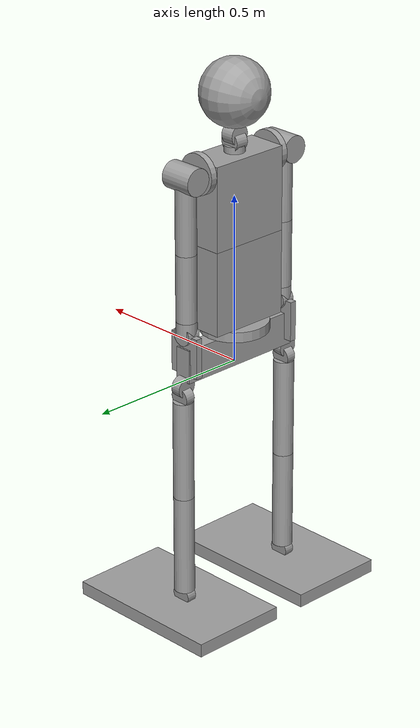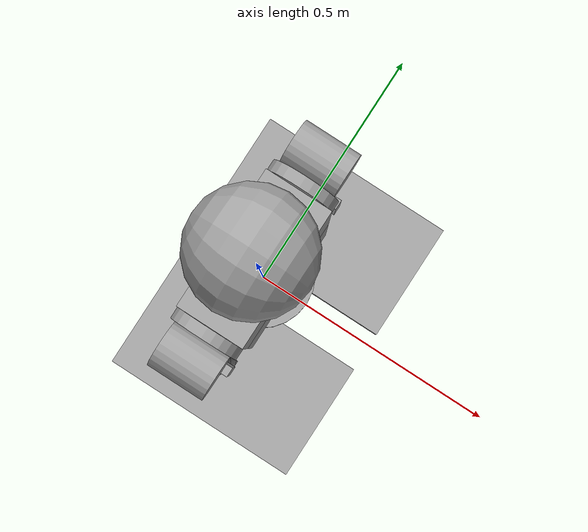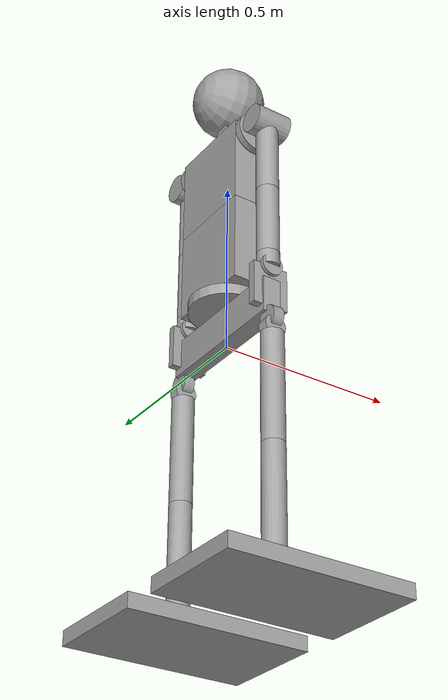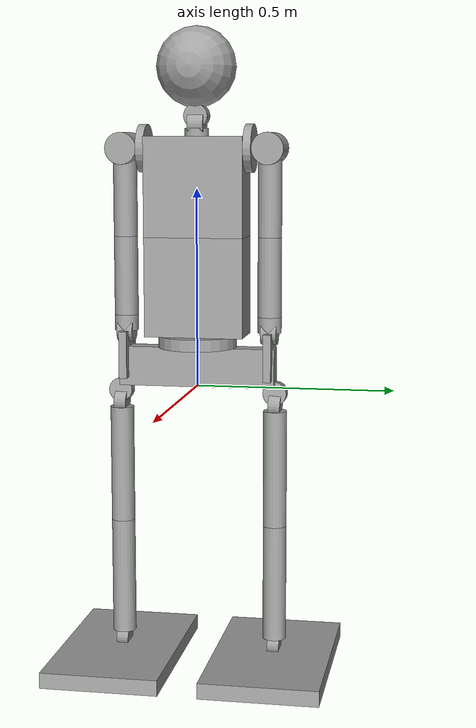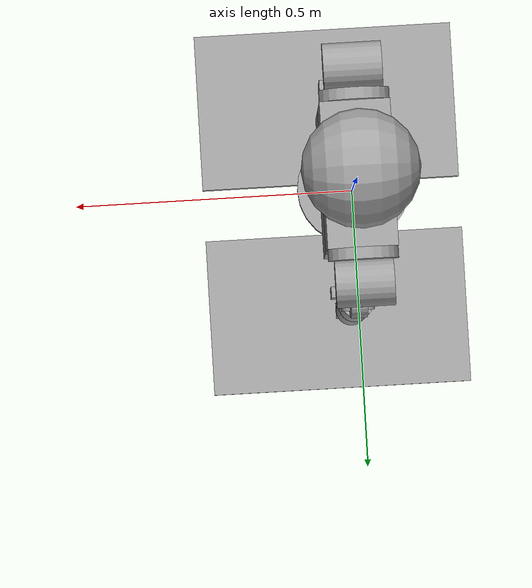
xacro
<robot xmlns:xacro="http://www.ros.org/wiki/xacro" name="stickbot_humanoid_32dof" >
    <xacro:include filename="$(find stickbot_humanoid_32dof)/models/stickbot_humanoid_32dof/xacro/stickbot_humanoid_32dof_base.xacro" />
    <stickbot_humanoid_32dof />

    <link name="world">
        <!-- Virtual Link -->
        <inertial>
            <mass value="0.1"/>
            <origin rpy="0 0 0" xyz="0 0 1.2"/>
            <inertia ixx="8.33333333333e-05" ixy="0.0" ixz="0.0" iyy="8.33333333333e-05" iyz="0.0" izz="0.000125"/>
        </inertial>
    </link>

    <joint name="footOffset" type="fixed">
        <origin rpy="0 0 0" xyz="0 0 0"/>
        <axis xyz="0 0 1"/>
        <parent link="world"/>
        <child link="pelvis"/>
    </joint>
</robot>

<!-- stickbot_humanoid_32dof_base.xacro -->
<robot xmlns:xacro="http://ros.org/wiki/xacro" name="stickbot_humanoid_32dof">

  <macro name="stickbot_humanoid_32dof">
    <link name="pelvis">
      <inertial>
        <mass value="2"/>
        <origin xyz="0.0 0.0 0.05"/>
        <inertia ixx="0.008667" ixy="0" ixz="0" iyy="0.008667" iyz="0" izz="0.01667"/>
      </inertial>
      <visual>
        <origin rpy="0 0 0 " xyz="0.0 -0.0 0.05"/>
        <geometry name="pelvis">
          <box size="0.05 0.4 0.1"/>
        </geometry>
        <material name="grey">
          <color rgba="0.627 0.627 0.627 1"/>
        </material>
      </visual>
      <collision>
        <origin rpy="0 0 0 " xyz="0.0 -0.0 0.05"/>
        <geometry name="pelvis">
          <box size="0.05 0.4 0.1"/>
        </geometry>
      </collision>
    </link>

  <!--LEFT LEG-->
    <joint name="leftHipJoint1" type="continuous">
      <axis xyz="0 0 1"/>
      <origin rpy="0 0 0" xyz="0 0.2 0.0"/>
      <parent link="pelvis"/>
      <child link="leftHipLink1"/>
      <dynamics damping="0.1"/>
      <limit effort="100" lower="-3.14" upper="3.14" velocity="1"/>
      <provide_feedback>true</provide_feedback>
    </joint>

    <link name="leftHipLink1">
      <inertial>
        <mass value="2.0"/>
        <origin xyz="0.0 0.0 -0.015"/>
        <inertia ixx="0.00015" ixy="0" ixz="0" iyy="0.00015" iyz="0" izz="0.000225"/>
      </inertial>
      <visual>
        <origin rpy="0 1.507 0" xyz="0 0.0 -0.015"/>
        <geometry name="leftHipLink1">
          <cylinder radius="0.03" length="0.03"/>
        </geometry>
        <material name="grey">
          <color rgba="0.627 0.627 0.627 1"/>
        </material>
      </visual>
      <collision>
        <origin rpy="1.507 0 0.0 " xyz="0 0.0 -0.015"/>
        <geometry name="leftHipLink1">
          <cylinder radius="0.03" length="0.03"/>
        </geometry>
      </collision>
    </link>

     <joint name="leftHipExtensor" type="continuous">
      <axis xyz="0 1 0"/>
      <origin rpy="0 0 0" xyz="0 0 -0.03"/>
      <parent link="leftHipLink1"/>
      <child link="leftHipExtensorLink"/>
      <dynamics damping="0.1"/>
      <limit effort="100" lower="-3.14" upper="3.14" velocity="1"/>
      <provide_feedback>true</provide_feedback>
    </joint>

    <link name="leftHipExtensorLink">
      <inertial>
        <mass value="2.0"/>
        <origin xyz="0.0 0.0 -0.015"/>
        <inertia ixx="0.00015" ixy="0" ixz="0" iyy="0.00015" iyz="0" izz="0.000225"/>
      </inertial>
      <visual>
        <origin rpy="1.507 0 0" xyz="0 0 -0.015"/>
        <geometry name="leftHipExtensorLink">
          <cylinder radius="0.03" length="0.03"/>
        </geometry>
        <material name="grey">
          <color rgba="0.627 0.627 0.627 1"/>
        </material>
      </visual>
      <collision>
        <origin rpy="1.507 0 0.0 " xyz="0 0 -0.015"/>
        <geometry name="leftHipExtensorLink">
          <cylinder radius="0.03" length="0.03"/>
        </geometry>
      </collision>
    </link>

     <joint name="leftHipAductor" type="continuous">
      <axis xyz="1 0 0"/>
      <origin rpy="0 0 0" xyz="0 0 -0.03"/>
      <parent link="leftHipExtensorLink"/>
      <child link="leftUpperLeg"/>
      <dynamics damping="0.1"/>
      <limit effort="100" lower="-3.14" upper="3.14" velocity="1"/>
      <provide_feedback>true</provide_feedback>
    </joint>

    <link name="leftUpperLeg">
      <inertial>
        <mass value="2.0"/>
        <origin xyz="-0.0 0 -0.15"/>
        <inertia ixx="0.01545" ixy="0" ixz="0" iyy="0.01545" iyz="0" izz="0.0009"/>
      </inertial>
      <visual>
        <origin rpy="0 0 0 " xyz="0 0 -0.15"/>
        <geometry name="leftUpperLeg">
          <cylinder radius="0.03" length="0.3"/>
        </geometry>
        <material name="grey">
          <color rgba="0.627 0.627 0.627 1"/>
        </material>
      </visual>
      <collision>
        <origin rpy="0 0 0 " xyz="0 0 -0.3"/>
        <geometry name="leftUpperLeg">
          <cylinder radius="0.03" length="0.3"/>
        </geometry>
      </collision>
    </link>

    <joint name="leftKnee" type="continuous">
      <axis xyz="0 1 0"/>
      <origin rpy="0 0 0" xyz="0 0 -0.3"/>
      <parent link="leftUpperLeg"/>
      <child link="leftLowerLeg"/>
      <dynamics damping="0.1"/>
      <limit effort="100" lower="-3.14" upper="3.14" velocity="1"/>
      <provide_feedback>true</provide_feedback>
    </joint>

    <link name="leftLowerLeg">
      <inertial>
        <mass value="2.0"/>
        <origin xyz="-0.0 0 -0.15"/>
        <inertia ixx="0.01545" ixy="0" ixz="0" iyy="0.01545" iyz="0" izz="0.0009"/>
      </inertial>
      <visual>
        <origin rpy="0 0 0 " xyz="0 0 -0.15"/>
        <geometry name="leftLowerLeg">
          <cylinder radius="0.03" length="0.3"/>
        </geometry>
        <material name="grey">
          <color rgba="0.627 0.627 0.627 1"/>
        </material>
      </visual>
      <collision>
        <origin rpy="0 0 0 " xyz="0 0 -0.15"/>
        <geometry name="leftLowerLeg">
          <cylinder radius="0.03" length="0.3"/>
        </geometry>
      </collision>
    </link>

    <joint name="leftAnklePitch" type="continuous">
      <axis xyz="0 1 0"/>
      <origin rpy="0 0 0" xyz="0 0 -0.3"/>
      <parent link="leftLowerLeg"/>
      <child link="leftAnkleLink"/>
      <dynamics damping="0.1"/>
      <limit effort="100" lower="-3.14" upper="3.14" velocity="1"/>
      <provide_feedback>true</provide_feedback>
    </joint>

    <link name="leftAnkleLink">
      <inertial>
        <mass value="3.0"/>
        <origin xyz="0.0 0.0 -0.015"/>
        <inertia ixx="0.00015" ixy="0" ixz="0" iyy="0.00015" iyz="0" izz="0.000225"/>
      </inertial>
      <visual>
        <origin rpy="1.507 0 0" xyz="0 0 -0.015"/>
        <geometry name="leftAnkleLink">
          <cylinder radius="0.03" length="0.03"/>
        </geometry>
        <material name="grey">
          <color rgba="0.627 0.627 0.627 1"/>
        </material>
      </visual>
      <collision>
        <origin rpy="0 0 0.0 " xyz="0 0 -0.015"/>
        <geometry name="leftAnkleLink">
          <cylinder radius="0.03" length="0.03"/>
        </geometry>
      </collision>
    </link>

    <joint name="leftAnkleRoll" type="continuous">
      <axis xyz="1 0 0"/>
      <origin rpy="0 0 0" xyz="0.025 0 -0.03"/>
      <parent link="leftAnkleLink"/>
      <child link="leftFoot"/>
      <dynamics damping="0.1"/>
      <limit effort="100" lower="-3.14" upper="3.14" velocity="1"/>
      <provide_feedback>true</provide_feedback>
    </joint>

    <link name="leftFoot">
      <inertial>
        <mass value="10"/>
        <origin xyz="0.03 0 -0.01"/>
        <inertia ixx="0.008667" ixy="0" ixz="0" iyy="0.008667" iyz="0" izz="0.01667"/>
      </inertial>
      <visual>
        <origin rpy="0 0 0 " xyz="0.0 0 -0.02"/>
        <geometry name="leftFoot">
        <box size="0.5 0.3 0.04"/>
        </geometry>
        <material name="grey">
          <color rgba="0.627 0.627 0.627 1"/>
        </material>
      </visual>
      <collision>
        <origin rpy="0 0 0 " xyz="0.0 0 -0.02"/>
        <geometry name="leftFoot">
          <box size="0.5 0.3 0.04"/>
        </geometry>
      </collision>
    </link>

  <!--RIGHT LEG-->
    <joint name="rightHipJoint1" type="continuous">
      <axis xyz="0 0 1"/>
      <origin rpy="0 0 0" xyz="0 -0.2 0.0"/>
      <dynamics damping="0.1"/>
      <parent link="pelvis"/>
      <child link="rightHipLink1"/>
      <limit effort="100" lower="-3.14" upper="3.14" velocity="1"/>
      <provide_feedback>true</provide_feedback>
    </joint>

    <link name="rightHipLink1">
      <inertial>
        <mass value="2.0"/>
        <origin xyz="0.0 0.0 -0.015"/>
        <inertia ixx="0.00015" ixy="0" ixz="0" iyy="0.00015" iyz="0" izz="0.000225"/>
      </inertial>
      <visual>
        <origin rpy="0 1.507 0" xyz="0 0.0 -0.015"/>
        <geometry name="rightHipLink1">
          <cylinder radius="0.03" length="0.03"/>
        </geometry>
        <material name="grey">
          <color rgba="0.627 0.627 0.627 1"/>
        </material>
      </visual>
      <collision>
        <origin rpy="1.507 0 0.0 " xyz="0 0.0 -0.015"/>
        <geometry name="rightHipLink1">
          <cylinder radius="0.03" length="0.03"/>
        </geometry>
      </collision>
    </link>

    <joint name="rightHipExtensor" type="continuous">
      <axis xyz="0 1 0"/>
      <origin rpy="0 0 0" xyz="0 0 -0.03"/>
      <dynamics damping="0.1"/>
      <parent link="rightHipLink1"/>
      <child link="rightHipExtensorLink"/>
      <limit effort="100" lower="-3.14" upper="3.14" velocity="1"/>
      <provide_feedback>true</provide_feedback>
    </joint>

    <link name="rightHipExtensorLink">
      <inertial>
        <mass value="2.0"/>
        <origin xyz="0.0 0.0 -0.015"/>
        <inertia ixx="0.00015" ixy="0" ixz="0" iyy="0.00015" iyz="0" izz="0.000225"/>
      </inertial>
      <visual>
        <origin rpy="1.507 0 0" xyz="0 0 -0.015"/>
        <geometry name="rightHipExtensorLink">
          <cylinder radius="0.03" length="0.03"/>
        </geometry>
        <material name="grey">
          <color rgba="0.627 0.627 0.627 1"/>
        </material>
      </visual>
      <collision>
        <origin rpy="1.507 0 0.0 " xyz="0 0 -0.015"/>
        <geometry name="rightHipExtensorLink">
          <cylinder radius="0.03" length="0.03"/>
        </geometry>
      </collision>
    </link>

    <joint name="rightHipAductor" type="continuous">
      <axis xyz="1 0 0"/>
      <origin rpy="0 0 0" xyz="0 0 -0.03"/>
      <parent link="rightHipExtensorLink"/>
      <child link="rightUpperLeg"/>
      <dynamics damping="0.1"/>
      <limit effort="100" lower="-3.14" upper="3.14" velocity="1"/>
      <provide_feedback>true</provide_feedback>
    </joint>

    <link name="rightUpperLeg">
      <inertial>
        <mass value="2.0"/>
        <origin xyz="-0.0 0 -0.15"/>
        <inertia ixx="0.01545" ixy="0" ixz="0" iyy="0.01545" iyz="0" izz="0.0009"/>
      </inertial>
      <visual>
        <origin rpy="0 0 0 " xyz="0 0 -0.15"/>
        <geometry name="rightUpperLeg">
          <cylinder radius="0.03" length="0.3"/>
        </geometry>
        <material name="grey">
          <color rgba="0.627 0.627 0.627 1"/>
        </material>
      </visual>
      <collision>
        <origin rpy="0 0 0 " xyz="0 0 -0.3"/>
        <geometry name="rightUpperLeg">
          <cylinder radius="0.03" length="0.3"/>
        </geometry>
      </collision>
    </link>

    <joint name="rightKnee" type="continuous">
      <axis xyz="0 1 0"/>
      <origin rpy="0 0 0" xyz="0 0 -0.3"/>
      <parent link="rightUpperLeg"/>
      <child link="rightLowerLeg"/>
      <dynamics damping="0.1"/>
      <limit effort="100" lower="-3.14" upper="3.14" velocity="1"/>
      <provide_feedback>true</provide_feedback>
    </joint>

    <link name="rightLowerLeg">
      <inertial>
        <mass value="2.0"/>
        <origin xyz="-0.0 0 -0.15"/>
        <inertia ixx="0.01545" ixy="0" ixz="0" iyy="0.01545" iyz="0" izz="0.0009"/>
      </inertial>
      <visual>
        <origin rpy="0 0 0 " xyz="0 0 -0.15"/>
        <geometry name="rightLowerLeg">
          <cylinder radius="0.03" length="0.3"/>
        </geometry>
        <material name="grey">
          <color rgba="0.627 0.627 0.627 1"/>
        </material>
      </visual>
      <collision>
        <origin rpy="0 0 0 " xyz="0 0 -0.15"/>
        <geometry name="rightLowerLeg">
          <cylinder radius="0.03" length="0.3"/>
        </geometry>
      </collision>
    </link>

    <joint name="rightAnklePitch" type="continuous">
      <axis xyz="0 1 0"/>
      <origin rpy="0 0 0" xyz="0 0 -0.3"/>
      <dynamics damping="0.1"/>
      <parent link="rightLowerLeg"/>
      <child link="rightAnkleLink"/>
      <limit effort="100" lower="-3.14" upper="3.14" velocity="1"/>
      <provide_feedback>true</provide_feedback>
    </joint>

    <link name="rightAnkleLink">
      <inertial>
        <mass value="3.0"/>
        <origin xyz="0.0 0.0 -0.015"/>
        <inertia ixx="0.00015" ixy="0" ixz="0" iyy="0.00015" iyz="0" izz="0.000225"/>
      </inertial>
      <visual>
        <origin rpy="1.507 0 0" xyz="0 0 -0.015"/>
        <geometry name="rightAnkleLink">
          <cylinder radius="0.03" length="0.03"/>
        </geometry>
        <material name="grey">
          <color rgba="0.627 0.627 0.627 1"/>
        </material>
      </visual>
      <collision>
         <origin rpy="1.507 0 0" xyz="0 0 -0.015"/>
        <geometry name="rightAnkleLink">
          <cylinder radius="0.03" length="0.03"/>
        </geometry>
      </collision>
    </link>

    <joint name="rightAnkleRoll" type="continuous">
      <axis xyz="1 0 0"/>
      <origin rpy="0 0 0" xyz="0.025 0 -0.03"/>
      <parent link="rightAnkleLink"/>
      <child link="rightFoot"/>
      <dynamics damping="0.1"/>
      <limit effort="100" lower="-3.14" upper="3.14" velocity="1"/>
      <provide_feedback>true</provide_feedback>
    </joint>

    <link name="rightFoot">
      <inertial>
        <mass value="10"/>
        <origin xyz="0.03 0 -0.02"/>
        <inertia ixx="0.008667" ixy="0" ixz="0" iyy="0.008667" iyz="0" izz="0.01667"/>
      </inertial>
      <visual>
        <origin rpy="0 0 0 " xyz="0.0 0 -0.02"/>
        <geometry name="rightFoot">
          <box size="0.5 0.3 0.04"/>
        </geometry>
        <material name="grey">
          <color rgba="0.627 0.627 0.627 1"/>
        </material>
      </visual>
      <collision>
        <origin rpy="0 0 0 " xyz="0.0 0 -0.02"/>
        <geometry name="rightFoot">
          <box size="0.5 0.3 0.04"/>
        </geometry>
      </collision>
    </link>

    <joint name="waist_rotator" type="continuous">
      <axis xyz="0 0 1"/>
      <origin rpy="0 0 0" xyz="0.0 0.0 0.1"/>
      <dynamics damping="0.1"/>
      <parent link="pelvis"/>
      <child link="abdomen"/>
      <limit effort="100" lower="-3.14" upper="3.14" velocity="10"/>
      <provide_feedback>true</provide_feedback>
    </joint>

    <link name="abdomen">
      <inertial>
        <mass value="1.0"/>
        <origin xyz="0.0 0.0 0.125"/>
        <inertia ixx="0.028125" ixy="0" ixz="0" iyy="0.045" iyz="0" izz="0.028125"/>
      </inertial>
      <visual>
        <origin rpy="0.0 0.0 0.0" xyz="0.0 0.0 0.015"/>
        <geometry name="torso">
          <cylinder radius="0.1" length="0.03"/>
        </geometry>
        <material name="grey">
          <color rgba="0.627 0.627 0.627 1"/>
        </material>
      </visual>
      <collision>
        <origin rpy="0.0 0.0 0.0" xyz="0.0 0.0 0.015"/>
        <geometry name="torso">
          <cylinder radius="0.1" length="0.03"/>
        </geometry>
      </collision>
    </link>

    <joint name="torso_extensor" type="continuous">
      <axis xyz="0 1 0"/>
      <origin rpy="0 0 0" xyz="0.0 0.0 0.03"/>
      <dynamics damping="0.1"/>
      <parent link="abdomen"/>
      <child link="torso"/>
      <limit effort="100" lower="-3.14" upper="3.14" velocity="10"/>
      <provide_feedback>true</provide_feedback>
    </joint>

    <link name="torso">
      <inertial>
        <mass value="2"/>
        <origin xyz="0.0 0.0 0.125"/>
        <inertia ixx="0.028125" ixy="0" ixz="0" iyy="0.045" iyz="0" izz="0.028125"/>
      </inertial>
      <visual>
        <origin rpy="0.0 0.0 0.0" xyz="0.0 0.0 0.125"/>
        <geometry name="torso">
          <box size="0.12 0.25 0.25"/>
        </geometry>
        <material name="grey">
          <color rgba="0.627 0.627 0.627 1"/>
        </material>
      </visual>
      <collision>
        <origin rpy="0.0 0.0 0.0" xyz="0.0 0.0 0.125"/>
        <geometry name="torso">
          <box size="0.12 0.25 0.25"/>
        </geometry>
      </collision>
    </link>

    <joint name="chest_extensor" type="continuous">
      <axis xyz="0 1 0"/>
      <origin rpy="0 0 0" xyz="0.0 0.0 0.25"/>
      <dynamics damping="0.1"/>
      <parent link="torso"/>
      <child link="chest"/>
      <limit effort="100" lower="-3.14" upper="3.14" velocity="10"/>
      <provide_feedback>true</provide_feedback>
    </joint>

    <link name="chest">
      <inertial>
        <mass value="2"/>
        <origin xyz="0.0 0.0 0.125"/>
        <inertia ixx="0.028125" ixy="0" ixz="0" iyy="0.045" iyz="0" izz="0.028125"/>
      </inertial>
      <visual>
        <origin rpy="0.0 0.0 0.0" xyz="0.0 0.0 0.125"/>
        <geometry name="chest">
          <box size="0.12 0.25 0.25"/>
        </geometry>
        <material name="grey">
          <color rgba="0.627 0.627 0.627 1"/>
        </material>
      </visual>
      <collision>
        <origin rpy="0.0 0.0 0.0" xyz="0.0 0.0 0.125"/>
        <geometry name="chest">
          <box size="0.12 0.25 0.25"/>
        </geometry>
      </collision>
    </link>

    <joint name="right_shoulder_extensor" type="continuous">
      <axis xyz="0 1 0"/>
      <origin rpy="0 0 0" xyz="0.0 -0.125 0.22"/>
      <dynamics damping="0.1"/>
      <parent link="chest"/>
      <child link="right_shoulder_extensor"/>
      <limit effort="100" lower="-3.14" upper="3.14" velocity="10"/>
      <provide_feedback>true</provide_feedback>
    </joint>

    <link name="right_shoulder_extensor">
      <inertial>
        <mass value="1"/>
        <origin xyz="0.0 -0.01 0.0"/>
        <inertia ixx="0.028125" ixy="0" ixz="0" iyy="0.045" iyz="0" izz="0.028125"/>
      </inertial>
      <visual>
        <origin rpy="1.57 0.0 0.0" xyz="0.0 -0.01 0.0"/>
        <geometry name="right_shoulder_extensor">
          <cylinder radius="0.06" length="0.02"/>
        </geometry>
        <material name="grey">
          <color rgba="0.627 0.627 0.627 1"/>
        </material>
      </visual>
      <collision>
        <origin rpy="1.57 0.0 0.0" xyz="0.0 -0.01 0.0"/>
        <geometry name="right_shoulder_extensor">
          <cylinder radius="0.06" length="0.02"/>
        </geometry>
      </collision>
    </link>

    <joint name="right_shoulder_adductor" type="continuous">
      <axis xyz="1 0 0"/>
      <origin rpy="0 0 0" xyz="0.0 -0.04 0.0"/>
      <dynamics damping="0.1"/>
      <parent link="right_shoulder_extensor"/>
      <child link="right_shoulder_adductor"/>
      <limit effort="100" lower="-3.14" upper="3.14" velocity="10"/>
      <provide_feedback>true</provide_feedback>
    </joint>

    <link name="right_shoulder_adductor">
      <inertial>
        <mass value="1"/>
        <origin xyz="0.0 -0.02 0.0"/>
        <inertia ixx="0.028125" ixy="0" ixz="0" iyy="0.045" iyz="0" izz="0.028125"/>
      </inertial>
      <visual>
        <origin rpy="0.0 1.57 0.0" xyz="0.0 -0.02 0.0"/>
        <geometry name="right_shoulder_adductor">
          <cylinder radius="0.04" length="0.1"/>
        </geometry>
        <material name="grey">
          <color rgba="0.627 0.627 0.627 1"/>
        </material>
      </visual>
      <collision>
        <origin rpy="0.0 1.57 0.0" xyz="0.0 -0.02 0.0"/>
        <geometry name="right_shoulder_adductor">
          <cylinder radius="0.04" length="0.1"/>
        </geometry>
      </collision>
    </link>

    <joint name="right_shoulder_rotator" type="continuous">
      <axis xyz="0 0 1"/>
      <origin rpy="0 0 0" xyz="0.0 -0.02 -0.02"/>
      <dynamics damping="0.1"/>
      <parent link="right_shoulder_adductor"/>
      <child link="right_shoulder_rotator"/>
      <limit effort="100" lower="-3.14" upper="3.14" velocity="10"/>
      <provide_feedback>true</provide_feedback>
    </joint>

    <link name="right_shoulder_rotator">
      <inertial>
        <mass value="2"/>
        <origin xyz="0.0 0.0 -0.1"/>
        <inertia ixx="0.028125" ixy="0" ixz="0" iyy="0.045" iyz="0" izz="0.028125"/>
      </inertial>
      <visual>
        <origin rpy="0.0 0.0 0.0" xyz="0.0 0.0 -0.1"/>
        <geometry name="right_shoulder_rotator">
          <cylinder radius="0.03" length="0.2"/>
        </geometry>
        <material name="grey">
          <color rgba="0.627 0.627 0.627 1"/>
        </material>
      </visual>
      <collision>
        <origin rpy="0.0 0.0 0.0" xyz="0.0 0.0 -0.1"/>
        <geometry name="right_shoulder_rotator">
          <cylinder radius="0.03" length="0.2"/>
        </geometry>
      </collision>
    </link>

    <joint name="right_elbow_extensor" type="continuous">
      <axis xyz="0 1 0"/>
      <origin rpy="0 0 0" xyz="0.0 -0.0 -0.2"/>
      <dynamics damping="0.1"/>
      <parent link="right_shoulder_rotator"/>
      <child link="right_elbow_extensor"/>
      <limit effort="100" lower="-3.14" upper="3.14" velocity="10"/>
      <provide_feedback>true</provide_feedback>
    </joint>

    <link name="right_elbow_extensor">
      <inertial>
        <mass value="2"/>
        <origin xyz="0.0 0.0 -0.1"/>
        <inertia ixx="0.028125" ixy="0" ixz="0" iyy="0.045" iyz="0" izz="0.028125"/>
      </inertial>
      <visual>
        <origin rpy="0.0 0.0 0.0" xyz="0.0 0.0 -0.1"/>
        <geometry name="right_elbow_extensor">
          <cylinder radius="0.03" length="0.2"/>
        </geometry>
        <material name="grey">
          <color rgba="0.627 0.627 0.627 1"/>
        </material>
      </visual>
      <collision>
        <origin rpy="0.0 0.0 0.0" xyz="0.0 0.0 -0.1"/>
        <geometry name="right_elbow_extensor">
          <cylinder radius="0.03" length="0.2"/>
        </geometry>
      </collision>
    </link>

    <joint name="right_wrist_rotator" type="continuous">
      <axis xyz="0 0 1"/>
      <origin rpy="0 0 0" xyz="0.0 -0.0 -0.2"/>
      <dynamics damping="0.1"/>
      <parent link="right_elbow_extensor"/>
      <child link="right_wrist_rotator"/>
      <limit effort="100" lower="-3.14" upper="3.14" velocity="10"/>
      <provide_feedback>true</provide_feedback>
    </joint>

    <link name="right_wrist_rotator">
      <inertial>
        <mass value="2"/>
        <origin xyz="0.0 0.0 -0.02"/>
        <inertia ixx="0.028125" ixy="0" ixz="0" iyy="0.045" iyz="0" izz="0.028125"/>
      </inertial>
      <visual>
        <origin rpy="0.0 0.0 0.0" xyz="0.0 0.0 -0.02"/>
        <geometry name="right_wrist_rotator">
          <cylinder radius="0.03" length="0.04"/>
        </geometry>
        <material name="grey">
          <color rgba="0.627 0.627 0.627 1"/>
        </material>
      </visual>
      <collision>
        <origin rpy="0.0 0.0 0.0" xyz="0.0 0.0 -0.02"/>
        <geometry name="right_wrist_rotator">
          <cylinder radius="0.03" length="0.04"/>
        </geometry>
      </collision>
    </link>

    <joint name="right_wrist_extensor" type="continuous">
      <axis xyz="0 1 0"/>
      <origin rpy="0 0 0" xyz="0.0 -0.0 -0.02"/>
      <dynamics damping="0.1"/>
      <parent link="right_wrist_rotator"/>
      <child link="right_wrist_extensor"/>
      <limit effort="100" lower="-3.14" upper="3.14" velocity="10"/>
      <provide_feedback>true</provide_feedback>
    </joint>

    <link name="right_wrist_extensor">
      <inertial>
        <mass value="1"/>
        <origin xyz="0.0 0.0 -0.02"/>
        <inertia ixx="0.028125" ixy="0" ixz="0" iyy="0.045" iyz="0" izz="0.028125"/>
      </inertial>
      <visual>
        <origin rpy="1.57 0.0 0.0" xyz="0.0 0.0 -0.02"/>
        <geometry name="right_wrist_extensor">
          <cylinder radius="0.03" length="0.04"/>
        </geometry>
        <material name="grey">
          <color rgba="0.627 0.627 0.627 1"/>
        </material>
      </visual>
      <collision>
        <origin rpy="1.57 0.0 0.0" xyz="0.0 0.0 -0.02"/>
        <geometry name="right_wrist_extensor">
          <cylinder radius="0.03" length="0.04"/>
        </geometry>
      </collision>
    </link>

    <joint name="right_wrist_adductor" type="continuous">
      <axis xyz="0 1 0"/>
      <origin rpy="0 0 0" xyz="0.0 -0.0 -0.02"/>
      <dynamics damping="0.1"/>
      <parent link="right_wrist_extensor"/>
      <child link="right_wrist_adductor"/>
      <limit effort="100" lower="-3.14" upper="3.14" velocity="10"/>
      <provide_feedback>true</provide_feedback>
    </joint>

    <link name="right_wrist_adductor">
      <inertial>
        <mass value="1"/>
        <origin xyz="0.0 0.0 -0.06"/>
        <inertia ixx="0.028125" ixy="0" ixz="0" iyy="0.045" iyz="0" izz="0.028125"/>
      </inertial>
      <visual>
        <origin rpy="0.0 0.0 0.0" xyz="0.0 0.0 -0.06"/>
        <geometry name="right_wrist_adductor">
          <box size="0.1 0.02 0.12"/>
        </geometry>
        <material name="grey">
          <color rgba="0.627 0.627 0.627 1"/>
        </material>
      </visual>
      <collision>
        <origin rpy="0.0 0.0 0.0" xyz="0.0 0.0 -0.06"/>
        <geometry name="right_wrist_adductor">
          <box size="0.1 0.02 0.12"/>
        </geometry>
      </collision>
    </link>

    <joint name="left_shoulder_extensor" type="continuous">
      <axis xyz="0 1 0"/>
      <origin rpy="0 0 0" xyz="0.0 0.125 0.22"/>
      <dynamics damping="0.1"/>
      <parent link="chest"/>
      <child link="left_shoulder_extensor"/>
      <limit effort="100" lower="-3.14" upper="3.14" velocity="10"/>
      <provide_feedback>true</provide_feedback>
    </joint>

    <link name="left_shoulder_extensor">
      <inertial>
        <mass value="1"/>
        <origin xyz="0.0 0.01 0.0"/>
        <inertia ixx="0.028125" ixy="0" ixz="0" iyy="0.045" iyz="0" izz="0.028125"/>
      </inertial>
      <visual>
        <origin rpy="1.57 0.0 0.0" xyz="0.0 0.01 0.0"/>
        <geometry name="left_shoulder_extensor">
          <cylinder radius="0.06" length="0.02"/>
        </geometry>
        <material name="grey">
          <color rgba="0.627 0.627 0.627 1"/>
        </material>
      </visual>
      <collision>
        <origin rpy="1.57 0.0 0.0" xyz="0.0 0.01 0.0"/>
        <geometry name="left_shoulder_extensor">
          <cylinder radius="0.06" length="0.02"/>
        </geometry>
      </collision>
    </link>

    <joint name="left_shoulder_adductor" type="continuous">
      <axis xyz="1 0 0"/>
      <origin rpy="0 0 0" xyz="0.0 0.04 0.0"/>
      <dynamics damping="0.1"/>
      <parent link="left_shoulder_extensor"/>
      <child link="left_shoulder_adductor"/>
      <limit effort="100" lower="-3.14" upper="3.14" velocity="10"/>
      <provide_feedback>true</provide_feedback>
    </joint>

    <link name="left_shoulder_adductor">
      <inertial>
        <mass value="1"/>
        <origin xyz="0.0 0.02 0.0"/>
        <inertia ixx="0.028125" ixy="0" ixz="0" iyy="0.045" iyz="0" izz="0.028125"/>
      </inertial>
      <visual>
        <origin rpy="0.0 1.57 0.0" xyz="0.0 0.02 0.0"/>
        <geometry name="left_shoulder_adductor">
          <cylinder radius="0.04" length="0.1"/>
        </geometry>
        <material name="grey">
          <color rgba="0.627 0.627 0.627 1"/>
        </material>
      </visual>
      <collision>
        <origin rpy="0.0 1.57 0.0" xyz="0.0 0.02 0.0"/>
        <geometry name="left_shoulder_adductor">
          <cylinder radius="0.04" length="0.1"/>
        </geometry>
      </collision>
    </link>

    <joint name="left_shoulder_rotator" type="continuous">
      <axis xyz="0 0 1"/>
      <origin rpy="0 0 0" xyz="0.0 0.02 -0.02"/>
      <dynamics damping="0.1"/>
      <parent link="left_shoulder_adductor"/>
      <child link="left_shoulder_rotator"/>
      <limit effort="100" lower="-3.14" upper="3.14" velocity="10"/>
      <provide_feedback>true</provide_feedback>
    </joint>

    <link name="left_shoulder_rotator">
      <inertial>
        <mass value="2"/>
        <origin xyz="0.0 0.0 -0.1"/>
        <inertia ixx="0.028125" ixy="0" ixz="0" iyy="0.045" iyz="0" izz="0.028125"/>
      </inertial>
      <visual>
        <origin rpy="0.0 0.0 0.0" xyz="0.0 0.0 -0.1"/>
        <geometry name="left_shoulder_rotator">
          <cylinder radius="0.03" length="0.2"/>
        </geometry>
        <material name="grey">
          <color rgba="0.627 0.627 0.627 1"/>
        </material>
      </visual>
      <collision>
        <origin rpy="0.0 0.0 0.0" xyz="0.0 0.0 -0.1"/>
        <geometry name="left_shoulder_rotator">
          <cylinder radius="0.03" length="0.2"/>
        </geometry>
      </collision>
    </link>

    <joint name="left_elbow_extensor" type="continuous">
      <axis xyz="0 1 0"/>
      <origin rpy="0 0 0" xyz="0.0 -0.0 -0.2"/>
      <dynamics damping="0.1"/>
      <parent link="left_shoulder_rotator"/>
      <child link="left_elbow_extensor"/>
      <limit effort="100" lower="-3.14" upper="3.14" velocity="10"/>
      <provide_feedback>true</provide_feedback>
    </joint>

    <link name="left_elbow_extensor">
      <inertial>
        <mass value="2"/>
        <origin xyz="0.0 0.0 -0.1"/>
        <inertia ixx="0.028125" ixy="0" ixz="0" iyy="0.045" iyz="0" izz="0.028125"/>
      </inertial>
      <visual>
        <origin rpy="0.0 0.0 0.0" xyz="0.0 0.0 -0.1"/>
        <geometry name="left_elbow_extensor">
          <cylinder radius="0.03" length="0.2"/>
        </geometry>
        <material name="grey">
          <color rgba="0.627 0.627 0.627 1"/>
        </material>
      </visual>
      <collision>
        <origin rpy="0.0 0.0 0.0" xyz="0.0 0.0 -0.1"/>
        <geometry name="left_elbow_extensor">
          <cylinder radius="0.03" length="0.2"/>
        </geometry>
      </collision>
    </link>

    <joint name="left_wrist_rotator" type="continuous">
      <axis xyz="0 0 1"/>
      <origin rpy="0 0 0" xyz="0.0 -0.0 -0.2"/>
      <dynamics damping="0.1"/>
      <parent link="left_elbow_extensor"/>
      <child link="left_wrist_rotator"/>
      <limit effort="100" lower="-3.14" upper="3.14" velocity="10"/>
      <provide_feedback>true</provide_feedback>
    </joint>

    <link name="left_wrist_rotator">
      <inertial>
        <mass value="2"/>
        <origin xyz="0.0 0.0 -0.02"/>
        <inertia ixx="0.028125" ixy="0" ixz="0" iyy="0.045" iyz="0" izz="0.028125"/>
      </inertial>
      <visual>
        <origin rpy="0.0 0.0 0.0" xyz="0.0 0.0 -0.02"/>
        <geometry name="left_wrist_rotator">
          <cylinder radius="0.03" length="0.04"/>
        </geometry>
        <material name="grey">
          <color rgba="0.627 0.627 0.627 1"/>
        </material>
      </visual>
      <collision>
        <origin rpy="0.0 0.0 0.0" xyz="0.0 0.0 -0.02"/>
        <geometry name="left_wrist_rotator">
          <cylinder radius="0.03" length="0.04"/>
        </geometry>
      </collision>
    </link>

    <joint name="left_wrist_extensor" type="continuous">
      <axis xyz="0 1 0"/>
      <origin rpy="0 0 0" xyz="0.0 -0.0 -0.02"/>
      <dynamics damping="0.1"/>
      <parent link="left_wrist_rotator"/>
      <child link="left_wrist_extensor"/>
      <limit effort="100" lower="-3.14" upper="3.14" velocity="10"/>
      <provide_feedback>true</provide_feedback>
    </joint>

    <link name="left_wrist_extensor">
      <inertial>
        <mass value="1"/>
        <origin xyz="0.0 0.0 -0.02"/>
        <inertia ixx="0.028125" ixy="0" ixz="0" iyy="0.045" iyz="0" izz="0.028125"/>
      </inertial>
      <visual>
        <origin rpy="1.57 0.0 0.0" xyz="0.0 0.0 -0.02"/>
        <geometry name="left_wrist_extensor">
          <cylinder radius="0.03" length="0.04"/>
        </geometry>
        <material name="grey">
          <color rgba="0.627 0.627 0.627 1"/>
        </material>
      </visual>
      <collision>
        <origin rpy="1.57 0.0 0.0" xyz="0.0 0.0 -0.02"/>
        <geometry name="left_wrist_extensor">
          <cylinder radius="0.03" length="0.04"/>
        </geometry>
      </collision>
    </link>

    <joint name="left_wrist_adductor" type="continuous">
      <axis xyz="0 1 0"/>
      <origin rpy="0 0 0" xyz="0.0 -0.0 -0.02"/>
      <dynamics damping="0.1"/>
      <parent link="left_wrist_extensor"/>
      <child link="left_wrist_adductor"/>
      <limit effort="100" lower="-3.14" upper="3.14" velocity="10"/>
      <provide_feedback>true</provide_feedback>
    </joint>

    <link name="left_wrist_adductor">
      <inertial>
        <mass value="1"/>
        <origin xyz="0.0 0.0 -0.06"/>
        <inertia ixx="0.028125" ixy="0" ixz="0" iyy="0.045" iyz="0" izz="0.028125"/>
      </inertial>
      <visual>
        <origin rpy="0.0 0.0 0.0" xyz="0.0 0.0 -0.06"/>
        <geometry name="left_wrist_adductor">
          <box size="0.1 0.02 0.12"/>
        </geometry>
        <material name="grey">
          <color rgba="0.627 0.627 0.627 1"/>
        </material>
      </visual>
      <collision>
        <origin rpy="0.0 0.0 0.0" xyz="0.0 0.0 -0.06"/>
        <geometry name="left_wrist_adductor">
          <box size="0.1 0.02 0.12"/>
        </geometry>
      </collision>
    </link>

    <joint name="neck_rotator" type="continuous">
      <axis xyz="0 0 1"/>
      <origin rpy="0 0 0" xyz="0.0 -0.0 0.25"/>
      <dynamics damping="0.1"/>
      <parent link="chest"/>
      <child link="neck_rotator"/>
      <limit effort="100" lower="-3.14" upper="3.14" velocity="10"/>
      <provide_feedback>true</provide_feedback>
    </joint>

    <link name="neck_rotator">
      <inertial>
        <mass value="0.5"/>
        <origin xyz="0.0 0.0 0.01"/>
        <inertia ixx="0.0028125" ixy="0" ixz="0" iyy="0.0045" iyz="0" izz="0.0028125"/>
      </inertial>
      <visual>
        <origin rpy="0.0 0.0 0.0" xyz="0.0 0.0 0.0"/>
        <geometry name="neck_rotator">
           <cylinder radius="0.03" length="0.04"/>
        </geometry>
        <material name="grey">
          <color rgba="0.627 0.627 0.627 1"/>
        </material>
      </visual>
      <collision>
        <origin rpy="0.0 0.0 0.0" xyz="0.0 0.0 0.0"/>
        <geometry name="neck_rotator">
           <cylinder radius="0.03" length="0.04"/>
        </geometry>
      </collision>
    </link>

    <joint name="neck_extensor" type="continuous">
      <axis xyz="0 1 0"/>
      <origin rpy="0 0 0" xyz="0.0 -0.0 0.02"/>
      <dynamics damping="0.1"/>
      <parent link="neck_rotator"/>
      <child link="neck_extensor"/>
      <limit effort="100" lower="-3.14" upper="3.14" velocity="10"/>
      <provide_feedback>true</provide_feedback>
    </joint>

    <link name="neck_extensor">
      <inertial>
        <mass value="0.5"/>
        <origin xyz="0.0 0.0 0.01"/>
        <inertia ixx="0.0028125" ixy="0" ixz="0" iyy="0.0045" iyz="0" izz="0.0028125"/>
      </inertial>
      <visual>
        <origin rpy="1.57 0.0 0.0" xyz="0.0 0.0 0.01"/>
        <geometry name="neck_rotator">
           <cylinder radius="0.03" length="0.04"/>
        </geometry>
        <material name="grey">
          <color rgba="0.627 0.627 0.627 1"/>
        </material>
      </visual>
      <collision>
        <origin rpy="1.57 0.0 0.0" xyz="0.0 0.0 0.01"/>
        <geometry name="neck_rotator">
           <cylinder radius="0.03" length="0.04"/>
        </geometry>
      </collision>
    </link>

    <joint name="neck_adductor" type="continuous">
      <axis xyz="1 0 0"/>
      <origin rpy="0 0 0" xyz="0.0 -0.0 0.02"/>
      <dynamics damping="0.1"/>
      <parent link="neck_extensor"/>
      <child link="neck_adductor"/>
      <limit effort="100" lower="-3.14" upper="3.14" velocity="10"/>
      <provide_feedback>true</provide_feedback>
    </joint>

    <link name="neck_adductor">
      <inertial>
        <mass value="0.5"/>
        <origin xyz="0.0 0.0 0.01"/>
        <inertia ixx="0.0028125" ixy="0" ixz="0" iyy="0.0045" iyz="0" izz="0.0028125"/>
      </inertial>
      <visual>
        <origin rpy="0.0 1.57 0.0" xyz="0.0 0.0 0.01"/>
        <geometry name="neck_adductor">
           <cylinder radius="0.03" length="0.04"/>
        </geometry>
        <material name="grey">
          <color rgba="0.627 0.627 0.627 1"/>
        </material>
      </visual>
      <collision>
        <origin rpy="0.0 1.57 0.0" xyz="0.0 0.0 0.01"/>
        <geometry name="neck_adductor">
           <cylinder radius="0.03" length="0.04"/>
        </geometry>
      </collision>
    </link>

    <joint name="head" type="fixed">
      <axis xyz="1 0 0"/>
      <origin rpy="0 0 0" xyz="0.0 -0.0 0.02"/>
      <dynamics damping="0.1"/>
      <parent link="neck_adductor"/>
      <child link="head"/>
      <limit effort="100" lower="-3.14" upper="3.14" velocity="10"/>
      <provide_feedback>true</provide_feedback>
    </joint>

    <link name="head">
      <inertial>
        <mass value="2"/>
        <origin xyz="0.0 0.0 0.11"/>
        <inertia ixx="0.0028125" ixy="0" ixz="0" iyy="0.0045" iyz="0" izz="0.0028125"/>
      </inertial>
      <visual>
        <origin rpy="0.0 1.57 0.0" xyz="0.0 0.0 0.11"/>
        <geometry name="head">
           <sphere radius="0.1"/>
        </geometry>
        <material name="grey">
          <color rgba="0.627 0.627 0.627 1"/>
        </material>
      </visual>
      <collision>
        <origin rpy="0.0 1.57 0.0" xyz="0.0 0.0 0.11"/>
        <geometry name="head">
           <sphere radius="0.1"/>
        </geometry>
      </collision>
    </link>

    <gazebo reference="leftHipJoint1">
      <provideFeedback value="true"/>
    </gazebo>
    <gazebo reference="leftHipExtensor">
      <provideFeedback value="true"/>
    </gazebo>
    <gazebo reference="leftHipAductor">
      <provideFeedback value="true"/>
    </gazebo>
    <gazebo reference="leftKnee">
      <provideFeedback value="true"/>
    </gazebo>
    <gazebo reference="leftAnklePitch">
      <provideFeedback value="true"/>
    </gazebo>
    <gazebo reference="leftAnkleRoll">
      <provideFeedback value="true"/>
    </gazebo>
    <gazebo reference="rightHipJoint1">
      <provideFeedback value="true"/>
    </gazebo>
    <gazebo reference="rightHipExtensor">
      <provideFeedback value="true"/>
    </gazebo>
    <gazebo reference="rightHipAductor">
      <provideFeedback value="true"/>
    </gazebo>
    <gazebo reference="rightKnee">
      <provideFeedback value="true"/>
    </gazebo>
    <gazebo reference="rightAnklePitch">
      <provideFeedback value="true"/>
    </gazebo>
    <gazebo reference="rightAnkleRoll">
      <provideFeedback value="true"/>
    </gazebo>
    <gazebo reference="waist_rotator">
      <provideFeedback value="true"/>
    </gazebo>
    <gazebo reference="torso_extensor">
      <provideFeedback value="true"/>
    </gazebo>
    <gazebo reference="chest_extensor">
      <provideFeedback value="true"/>
    </gazebo>
    <gazebo reference="left_shoulder_extensor">
      <provideFeedback value="true"/>
    </gazebo>
    <gazebo reference="left_shoulder_adductor">
      <provideFeedback value="true"/>
    </gazebo>
    <gazebo reference="left_shoulder_rotator">
      <provideFeedback value="true"/>
    </gazebo>
    <gazebo reference="left_elbow_extensor">
      <provideFeedback value="true"/>
    </gazebo>
    <gazebo reference="left_wrist_rotator">
      <provideFeedback value="true"/>
    </gazebo>
    <gazebo reference="left_wrist_extensor">
      <provideFeedback value="true"/>
    </gazebo>
    <gazebo reference="left_wrist_adductor">
      <provideFeedback value="true"/>
    </gazebo>
    <gazebo reference="neck_rotator">
      <provideFeedback value="true"/>
    </gazebo>
    <gazebo reference="neck_extensor">
      <provideFeedback value="true"/>
    </gazebo>
    <gazebo reference="neck_adductor">
      <provideFeedback value="true"/>
    </gazebo>
    <gazebo reference="right_shoulder_extensor">
      <provideFeedback value="true"/>
    </gazebo>
    <gazebo reference="right_shoulder_adductor">
      <provideFeedback value="true"/>
    </gazebo>
    <gazebo reference="right_shoulder_rotator">
      <provideFeedback value="true"/>
    </gazebo>
    <gazebo reference="right_elbow_extensor">
      <provideFeedback value="true"/>
    </gazebo>
    <gazebo reference="right_wrist_rotator">
      <provideFeedback value="true"/>
    </gazebo>
    <gazebo reference="right_wrist_extensor">
      <provideFeedback value="true"/>
    </gazebo>
    <gazebo reference="right_wrist_adductor">
      <provideFeedback value="true"/>
    </gazebo>
  </macro>
</robot>
